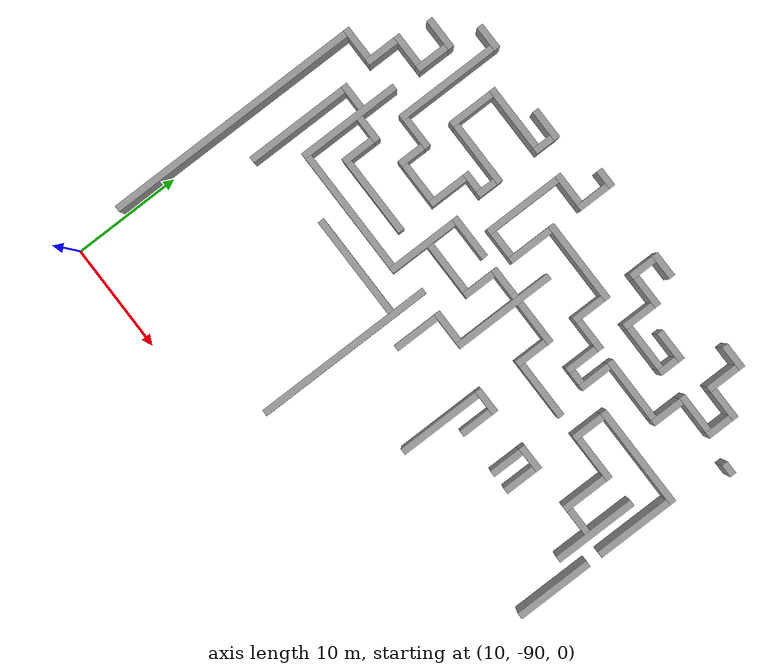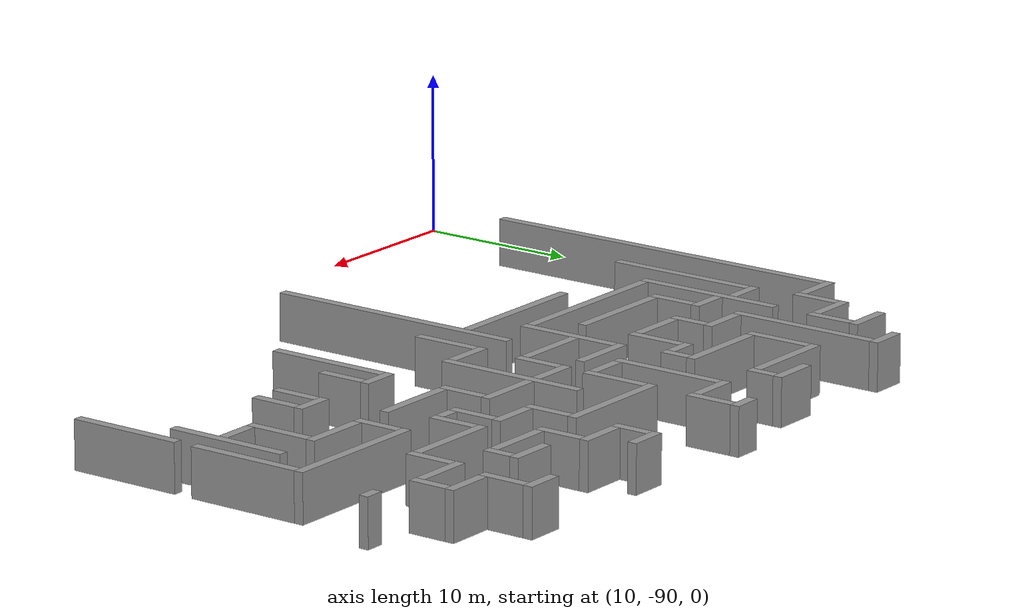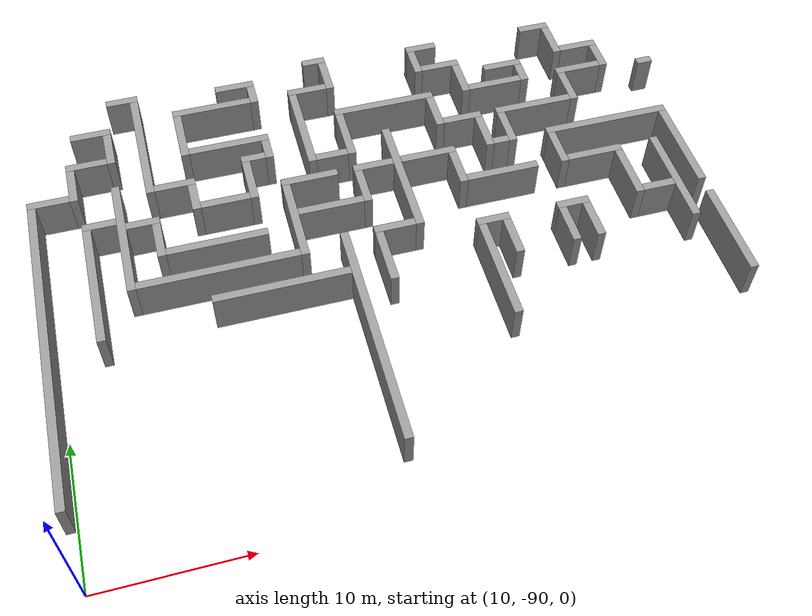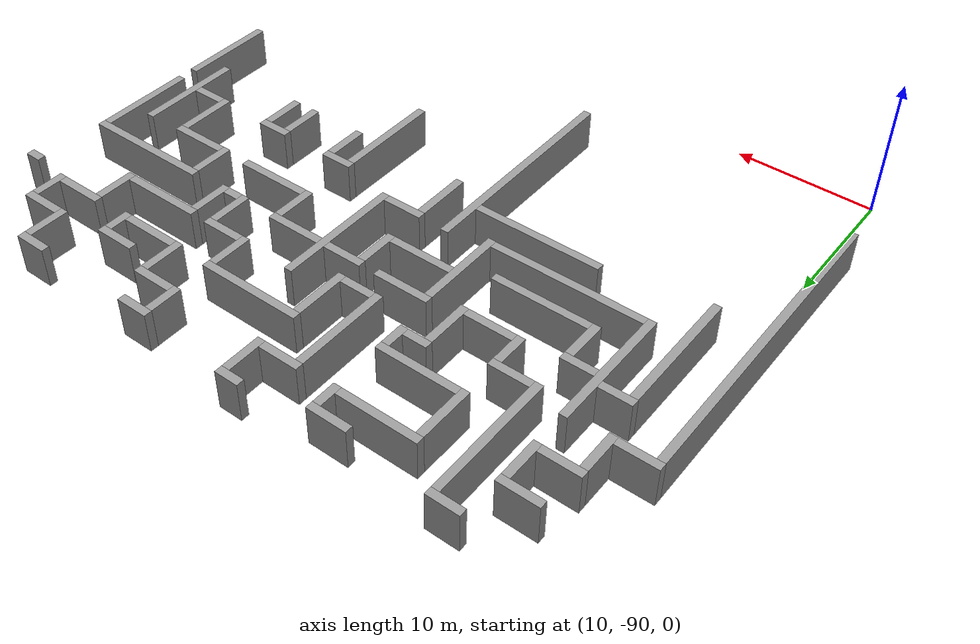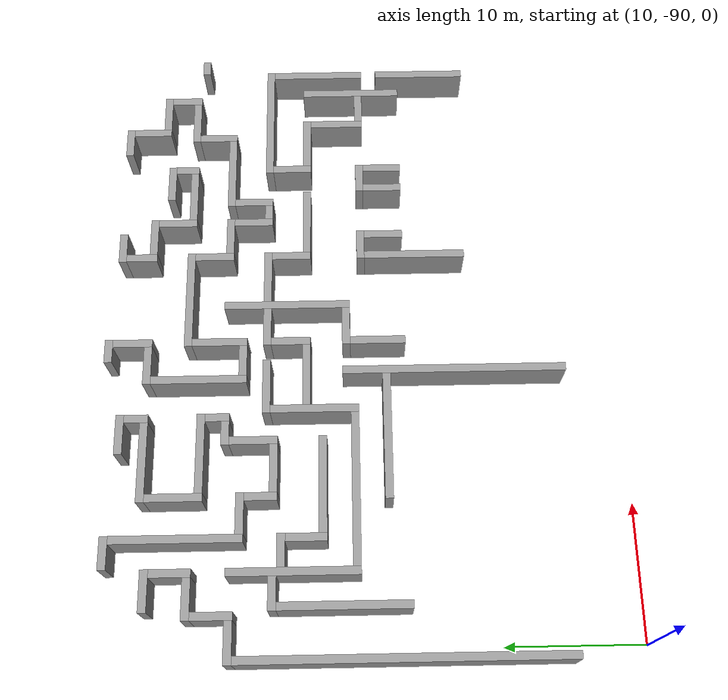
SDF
<sdf version="1.4">
 <model name="ButterflyWorld">
  <static>1</static>
  <link name="Wall_160">
   <collision name="Wall_160_Collision">
    <geometry><box><size>1.80000 0.60000 3.00000</size></box></geometry>
    <pose>32.10000 -51.30000 0 0 0 0.00000</pose>
   </collision>
   <visual name="Wall_160_Visual">
    <geometry><box><size>1.80000 0.60000 3.00000</size></box></geometry>
    <material>
     <script><uri>file://media/materials/scripts/gazebo.material</uri><name>Gazebo/Grey</name></script>
    </material>
    <pose>32.10000 -51.30000 0 0 0 0.00000</pose>
   </visual>
  </link>
  <link name="Wall_161">
   <collision name="Wall_161_Collision">
    <geometry><box><size>2.40000 0.60000 3.00000</size></box></geometry>
    <pose>16.80000 -51.90000 0 0 0 0.00000</pose>
   </collision>
   <visual name="Wall_161_Visual">
    <geometry><box><size>2.40000 0.60000 3.00000</size></box></geometry>
    <material>
     <script><uri>file://media/materials/scripts/gazebo.material</uri><name>Gazebo/Grey</name></script>
    </material>
    <pose>16.80000 -51.90000 0 0 0 0.00000</pose>
   </visual>
  </link>
  <link name="Wall_162">
   <collision name="Wall_162_Collision">
    <geometry><box><size>0.60000 3.00000 3.00000</size></box></geometry>
    <pose>32.70000 -53.10000 0 0 0 0.00000</pose>
   </collision>
   <visual name="Wall_162_Visual">
    <geometry><box><size>0.60000 3.00000 3.00000</size></box></geometry>
    <material>
     <script><uri>file://media/materials/scripts/gazebo.material</uri><name>Gazebo/Grey</name></script>
    </material>
    <pose>32.70000 -53.10000 0 0 0 0.00000</pose>
   </visual>
  </link>
  <link name="Wall_163">
   <collision name="Wall_163_Collision">
    <geometry><box><size>2.40000 0.60000 3.00000</size></box></geometry>
    <pose>40.80000 -51.90000 0 0 0 0.00000</pose>
   </collision>
   <visual name="Wall_163_Visual">
    <geometry><box><size>2.40000 0.60000 3.00000</size></box></geometry>
    <material>
     <script><uri>file://media/materials/scripts/gazebo.material</uri><name>Gazebo/Grey</name></script>
    </material>
    <pose>40.80000 -51.90000 0 0 0 0.00000</pose>
   </visual>
  </link>
  <link name="Wall_164">
   <collision name="Wall_164_Collision">
    <geometry><box><size>2.40000 0.60000 3.00000</size></box></geometry>
    <pose>50.40000 -51.90000 0 0 0 0.00000</pose>
   </collision>
   <visual name="Wall_164_Visual">
    <geometry><box><size>2.40000 0.60000 3.00000</size></box></geometry>
    <material>
     <script><uri>file://media/materials/scripts/gazebo.material</uri><name>Gazebo/Grey</name></script>
    </material>
    <pose>50.40000 -51.90000 0 0 0 0.00000</pose>
   </visual>
  </link>
  <link name="Wall_165">
   <collision name="Wall_165_Collision">
    <geometry><box><size>0.60000 9.60000 3.00000</size></box></geometry>
    <pose>17.70000 -57.00000 0 0 0 0.00000</pose>
   </collision>
   <visual name="Wall_165_Visual">
    <geometry><box><size>0.60000 9.60000 3.00000</size></box></geometry>
    <material>
     <script><uri>file://media/materials/scripts/gazebo.material</uri><name>Gazebo/Grey</name></script>
    </material>
    <pose>17.70000 -57.00000 0 0 0 0.00000</pose>
   </visual>
  </link>
  <link name="Wall_166">
   <collision name="Wall_166_Collision">
    <geometry><box><size>3.00000 0.60000 3.00000</size></box></geometry>
    <pose>25.50000 -52.50000 0 0 0 0.00000</pose>
   </collision>
   <visual name="Wall_166_Visual">
    <geometry><box><size>3.00000 0.60000 3.00000</size></box></geometry>
    <material>
     <script><uri>file://media/materials/scripts/gazebo.material</uri><name>Gazebo/Grey</name></script>
    </material>
    <pose>25.50000 -52.50000 0 0 0 0.00000</pose>
   </visual>
  </link>
  <link name="Wall_167">
   <collision name="Wall_167_Collision">
    <geometry><box><size>0.60000 2.40000 3.00000</size></box></geometry>
    <pose>39.90000 -53.40000 0 0 0 0.00000</pose>
   </collision>
   <visual name="Wall_167_Visual">
    <geometry><box><size>0.60000 2.40000 3.00000</size></box></geometry>
    <material>
     <script><uri>file://media/materials/scripts/gazebo.material</uri><name>Gazebo/Grey</name></script>
    </material>
    <pose>39.90000 -53.40000 0 0 0 0.00000</pose>
   </visual>
  </link>
  <link name="Wall_168">
   <collision name="Wall_168_Collision">
    <geometry><box><size>0.60000 3.00000 3.00000</size></box></geometry>
    <pose>51.30000 -53.70000 0 0 0 0.00000</pose>
   </collision>
   <visual name="Wall_168_Visual">
    <geometry><box><size>0.60000 3.00000 3.00000</size></box></geometry>
    <material>
     <script><uri>file://media/materials/scripts/gazebo.material</uri><name>Gazebo/Grey</name></script>
    </material>
    <pose>51.30000 -53.70000 0 0 0 0.00000</pose>
   </visual>
  </link>
  <link name="Wall_169">
   <collision name="Wall_169_Collision">
    <geometry><box><size>0.60000 1.80000 3.00000</size></box></geometry>
    <pose>26.70000 -53.70000 0 0 0 0.00000</pose>
   </collision>
   <visual name="Wall_169_Visual">
    <geometry><box><size>0.60000 1.80000 3.00000</size></box></geometry>
    <material>
     <script><uri>file://media/materials/scripts/gazebo.material</uri><name>Gazebo/Grey</name></script>
    </material>
    <pose>26.70000 -53.70000 0 0 0 0.00000</pose>
   </visual>
  </link>
  <link name="Wall_170">
   <collision name="Wall_170_Collision">
    <geometry><box><size>6.00000 0.60000 3.00000</size></box></geometry>
    <pose>23.40000 -54.30000 0 0 0 0.00000</pose>
   </collision>
   <visual name="Wall_170_Visual">
    <geometry><box><size>6.00000 0.60000 3.00000</size></box></geometry>
    <material>
     <script><uri>file://media/materials/scripts/gazebo.material</uri><name>Gazebo/Grey</name></script>
    </material>
    <pose>23.40000 -54.30000 0 0 0 0.00000</pose>
   </visual>
  </link>
  <link name="Wall_171">
   <collision name="Wall_171_Collision">
    <geometry><box><size>3.00000 0.60000 3.00000</size></box></geometry>
    <pose>30.90000 -54.30000 0 0 0 0.00000</pose>
   </collision>
   <visual name="Wall_171_Visual">
    <geometry><box><size>3.00000 0.60000 3.00000</size></box></geometry>
    <material>
     <script><uri>file://media/materials/scripts/gazebo.material</uri><name>Gazebo/Grey</name></script>
    </material>
    <pose>30.90000 -54.30000 0 0 0 0.00000</pose>
   </visual>
  </link>
  <link name="Wall_172">
   <collision name="Wall_172_Collision">
    <geometry><box><size>3.00000 0.60000 3.00000</size></box></geometry>
    <pose>41.70000 -54.30000 0 0 0 0.00000</pose>
   </collision>
   <visual name="Wall_172_Visual">
    <geometry><box><size>3.00000 0.60000 3.00000</size></box></geometry>
    <material>
     <script><uri>file://media/materials/scripts/gazebo.material</uri><name>Gazebo/Grey</name></script>
    </material>
    <pose>41.70000 -54.30000 0 0 0 0.00000</pose>
   </visual>
  </link>
  <link name="Wall_173">
   <collision name="Wall_173_Collision">
    <geometry><box><size>3.00000 0.60000 3.00000</size></box></geometry>
    <pose>14.10000 -54.90000 0 0 0 0.00000</pose>
   </collision>
   <visual name="Wall_173_Visual">
    <geometry><box><size>3.00000 0.60000 3.00000</size></box></geometry>
    <material>
     <script><uri>file://media/materials/scripts/gazebo.material</uri><name>Gazebo/Grey</name></script>
    </material>
    <pose>14.10000 -54.90000 0 0 0 0.00000</pose>
   </visual>
  </link>
  <link name="Wall_174">
   <collision name="Wall_174_Collision">
    <geometry><box><size>0.60000 4.20000 3.00000</size></box></geometry>
    <pose>20.70000 -56.70000 0 0 0 0.00000</pose>
   </collision>
   <visual name="Wall_174_Visual">
    <geometry><box><size>0.60000 4.20000 3.00000</size></box></geometry>
    <material>
     <script><uri>file://media/materials/scripts/gazebo.material</uri><name>Gazebo/Grey</name></script>
    </material>
    <pose>20.70000 -56.70000 0 0 0 0.00000</pose>
   </visual>
  </link>
  <link name="Wall_175">
   <collision name="Wall_175_Collision">
    <geometry><box><size>0.60000 7.20000 3.00000</size></box></geometry>
    <pose>29.70000 -58.20000 0 0 0 0.00000</pose>
   </collision>
   <visual name="Wall_175_Visual">
    <geometry><box><size>0.60000 7.20000 3.00000</size></box></geometry>
    <material>
     <script><uri>file://media/materials/scripts/gazebo.material</uri><name>Gazebo/Grey</name></script>
    </material>
    <pose>29.70000 -58.20000 0 0 0 0.00000</pose>
   </visual>
  </link>
  <link name="Wall_176">
   <collision name="Wall_176_Collision">
    <geometry><box><size>0.60000 3.00000 3.00000</size></box></geometry>
    <pose>42.90000 -56.10000 0 0 0 0.00000</pose>
   </collision>
   <visual name="Wall_176_Visual">
    <geometry><box><size>0.60000 3.00000 3.00000</size></box></geometry>
    <material>
     <script><uri>file://media/materials/scripts/gazebo.material</uri><name>Gazebo/Grey</name></script>
    </material>
    <pose>42.90000 -56.10000 0 0 0 0.00000</pose>
   </visual>
  </link>
  <link name="Wall_177">
   <collision name="Wall_177_Collision">
    <geometry><box><size>3.00000 0.60000 3.00000</size></box></geometry>
    <pose>53.10000 -54.90000 0 0 0 0.00000</pose>
   </collision>
   <visual name="Wall_177_Visual">
    <geometry><box><size>3.00000 0.60000 3.00000</size></box></geometry>
    <material>
     <script><uri>file://media/materials/scripts/gazebo.material</uri><name>Gazebo/Grey</name></script>
    </material>
    <pose>53.10000 -54.90000 0 0 0 0.00000</pose>
   </visual>
  </link>
  <link name="Wall_178">
   <collision name="Wall_178_Collision">
    <geometry><box><size>0.60000 3.00000 3.00000</size></box></geometry>
    <pose>15.30000 -56.70000 0 0 0 0.00000</pose>
   </collision>
   <visual name="Wall_178_Visual">
    <geometry><box><size>0.60000 3.00000 3.00000</size></box></geometry>
    <material>
     <script><uri>file://media/materials/scripts/gazebo.material</uri><name>Gazebo/Grey</name></script>
    </material>
    <pose>15.30000 -56.70000 0 0 0 0.00000</pose>
   </visual>
  </link>
  <link name="Wall_179">
   <collision name="Wall_179_Collision">
    <geometry><box><size>3.00000 0.60000 3.00000</size></box></geometry>
    <pose>46.50000 -55.50000 0 0 0 0.00000</pose>
   </collision>
   <visual name="Wall_179_Visual">
    <geometry><box><size>3.00000 0.60000 3.00000</size></box></geometry>
    <material>
     <script><uri>file://media/materials/scripts/gazebo.material</uri><name>Gazebo/Grey</name></script>
    </material>
    <pose>46.50000 -55.50000 0 0 0 0.00000</pose>
   </visual>
  </link>
  <link name="Wall_180">
   <collision name="Wall_180_Collision">
    <geometry><box><size>0.60000 2.40000 3.00000</size></box></geometry>
    <pose>54.30000 -56.40000 0 0 0 0.00000</pose>
   </collision>
   <visual name="Wall_180_Visual">
    <geometry><box><size>0.60000 2.40000 3.00000</size></box></geometry>
    <material>
     <script><uri>file://media/materials/scripts/gazebo.material</uri><name>Gazebo/Grey</name></script>
    </material>
    <pose>54.30000 -56.40000 0 0 0 0.00000</pose>
   </visual>
  </link>
  <link name="Wall_181">
   <collision name="Wall_181_Collision">
    <geometry><box><size>0.60000 1.80000 3.00000</size></box></geometry>
    <pose>47.70000 -56.70000 0 0 0 0.00000</pose>
   </collision>
   <visual name="Wall_181_Visual">
    <geometry><box><size>0.60000 1.80000 3.00000</size></box></geometry>
    <material>
     <script><uri>file://media/materials/scripts/gazebo.material</uri><name>Gazebo/Grey</name></script>
    </material>
    <pose>47.70000 -56.70000 0 0 0 0.00000</pose>
   </visual>
  </link>
  <link name="Wall_182">
   <collision name="Wall_182_Collision">
    <geometry><box><size>7.80000 0.60000 3.00000</size></box></geometry>
    <pose>36.30000 -57.30000 0 0 0 0.00000</pose>
   </collision>
   <visual name="Wall_182_Visual">
    <geometry><box><size>7.80000 0.60000 3.00000</size></box></geometry>
    <material>
     <script><uri>file://media/materials/scripts/gazebo.material</uri><name>Gazebo/Grey</name></script>
    </material>
    <pose>36.30000 -57.30000 0 0 0 0.00000</pose>
   </visual>
  </link>
  <link name="Wall_183">
   <collision name="Wall_183_Collision">
    <geometry><box><size>4.20000 0.60000 3.00000</size></box></geometry>
    <pose>45.30000 -57.30000 0 0 0 0.00000</pose>
   </collision>
   <visual name="Wall_183_Visual">
    <geometry><box><size>4.20000 0.60000 3.00000</size></box></geometry>
    <material>
     <script><uri>file://media/materials/scripts/gazebo.material</uri><name>Gazebo/Grey</name></script>
    </material>
    <pose>45.30000 -57.30000 0 0 0 0.00000</pose>
   </visual>
  </link>
  <link name="Wall_184">
   <collision name="Wall_184_Collision">
    <geometry><box><size>3.60000 0.60000 3.00000</size></box></geometry>
    <pose>52.20000 -57.30000 0 0 0 0.00000</pose>
   </collision>
   <visual name="Wall_184_Visual">
    <geometry><box><size>3.60000 0.60000 3.00000</size></box></geometry>
    <material>
     <script><uri>file://media/materials/scripts/gazebo.material</uri><name>Gazebo/Grey</name></script>
    </material>
    <pose>52.20000 -57.30000 0 0 0 0.00000</pose>
   </visual>
  </link>
  <link name="Wall_185">
   <collision name="Wall_185_Collision">
    <geometry><box><size>3.00000 0.60000 3.00000</size></box></geometry>
    <pose>13.50000 -57.90000 0 0 0 0.00000</pose>
   </collision>
   <visual name="Wall_185_Visual">
    <geometry><box><size>3.00000 0.60000 3.00000</size></box></geometry>
    <material>
     <script><uri>file://media/materials/scripts/gazebo.material</uri><name>Gazebo/Grey</name></script>
    </material>
    <pose>13.50000 -57.90000 0 0 0 0.00000</pose>
   </visual>
  </link>
  <link name="Wall_186">
   <collision name="Wall_186_Collision">
    <geometry><box><size>0.60000 4.20000 3.00000</size></box></geometry>
    <pose>32.70000 -59.70000 0 0 0 0.00000</pose>
   </collision>
   <visual name="Wall_186_Visual">
    <geometry><box><size>0.60000 4.20000 3.00000</size></box></geometry>
    <material>
     <script><uri>file://media/materials/scripts/gazebo.material</uri><name>Gazebo/Grey</name></script>
    </material>
    <pose>32.70000 -59.70000 0 0 0 0.00000</pose>
   </visual>
  </link>
  <link name="Wall_187">
   <collision name="Wall_187_Collision">
    <geometry><box><size>0.60000 3.00000 3.00000</size></box></geometry>
    <pose>39.90000 -59.10000 0 0 0 0.00000</pose>
   </collision>
   <visual name="Wall_187_Visual">
    <geometry><box><size>0.60000 3.00000 3.00000</size></box></geometry>
    <material>
     <script><uri>file://media/materials/scripts/gazebo.material</uri><name>Gazebo/Grey</name></script>
    </material>
    <pose>39.90000 -59.10000 0 0 0 0.00000</pose>
   </visual>
  </link>
  <link name="Wall_188">
   <collision name="Wall_188_Collision">
    <geometry><box><size>0.60000 3.00000 3.00000</size></box></geometry>
    <pose>50.70000 -59.10000 0 0 0 0.00000</pose>
   </collision>
   <visual name="Wall_188_Visual">
    <geometry><box><size>0.60000 3.00000 3.00000</size></box></geometry>
    <material>
     <script><uri>file://media/materials/scripts/gazebo.material</uri><name>Gazebo/Grey</name></script>
    </material>
    <pose>50.70000 -59.10000 0 0 0 0.00000</pose>
   </visual>
  </link>
  <link name="Wall_189">
   <collision name="Wall_189_Collision">
    <geometry><box><size>1.20000 0.60000 3.00000</size></box></geometry>
    <pose>57.60000 -57.90000 0 0 0 0.00000</pose>
   </collision>
   <visual name="Wall_189_Visual">
    <geometry><box><size>1.20000 0.60000 3.00000</size></box></geometry>
    <material>
     <script><uri>file://media/materials/scripts/gazebo.material</uri><name>Gazebo/Grey</name></script>
    </material>
    <pose>57.60000 -57.90000 0 0 0 0.00000</pose>
   </visual>
  </link>
  <link name="Wall_190">
   <collision name="Wall_190_Collision">
    <geometry><box><size>0.60000 3.00000 3.00000</size></box></geometry>
    <pose>12.30000 -59.70000 0 0 0 0.00000</pose>
   </collision>
   <visual name="Wall_190_Visual">
    <geometry><box><size>0.60000 3.00000 3.00000</size></box></geometry>
    <material>
     <script><uri>file://media/materials/scripts/gazebo.material</uri><name>Gazebo/Grey</name></script>
    </material>
    <pose>12.30000 -59.70000 0 0 0 0.00000</pose>
   </visual>
  </link>
  <link name="Wall_191">
   <collision name="Wall_191_Collision">
    <geometry><box><size>6.00000 0.60000 3.00000</size></box></geometry>
    <pose>24.00000 -58.50000 0 0 0 0.00000</pose>
   </collision>
   <visual name="Wall_191_Visual">
    <geometry><box><size>6.00000 0.60000 3.00000</size></box></geometry>
    <material>
     <script><uri>file://media/materials/scripts/gazebo.material</uri><name>Gazebo/Grey</name></script>
    </material>
    <pose>24.00000 -58.50000 0 0 0 0.00000</pose>
   </visual>
  </link>
  <link name="Wall_192">
   <collision name="Wall_192_Collision">
    <geometry><box><size>0.60000 1.80000 3.00000</size></box></geometry>
    <pose>26.70000 -59.70000 0 0 0 0.00000</pose>
   </collision>
   <visual name="Wall_192_Visual">
    <geometry><box><size>0.60000 1.80000 3.00000</size></box></geometry>
    <material>
     <script><uri>file://media/materials/scripts/gazebo.material</uri><name>Gazebo/Grey</name></script>
    </material>
    <pose>26.70000 -59.70000 0 0 0 0.00000</pose>
   </visual>
  </link>
  <link name="Wall_193">
   <collision name="Wall_193_Collision">
    <geometry><box><size>1.80000 0.60000 3.00000</size></box></geometry>
    <pose>25.50000 -60.30000 0 0 0 0.00000</pose>
   </collision>
   <visual name="Wall_193_Visual">
    <geometry><box><size>1.80000 0.60000 3.00000</size></box></geometry>
    <material>
     <script><uri>file://media/materials/scripts/gazebo.material</uri><name>Gazebo/Grey</name></script>
    </material>
    <pose>25.50000 -60.30000 0 0 0 0.00000</pose>
   </visual>
  </link>
  <link name="Wall_194">
   <collision name="Wall_194_Collision">
    <geometry><box><size>0.60000 9.60000 3.00000</size></box></geometry>
    <pose>35.70000 -64.80000 0 0 0 0.00000</pose>
   </collision>
   <visual name="Wall_194_Visual">
    <geometry><box><size>0.60000 9.60000 3.00000</size></box></geometry>
    <material>
     <script><uri>file://media/materials/scripts/gazebo.material</uri><name>Gazebo/Grey</name></script>
    </material>
    <pose>35.70000 -64.80000 0 0 0 0.00000</pose>
   </visual>
  </link>
  <link name="Wall_195">
   <collision name="Wall_195_Collision">
    <geometry><box><size>3.00000 0.60000 3.00000</size></box></geometry>
    <pose>41.70000 -60.30000 0 0 0 0.00000</pose>
   </collision>
   <visual name="Wall_195_Visual">
    <geometry><box><size>3.00000 0.60000 3.00000</size></box></geometry>
    <material>
     <script><uri>file://media/materials/scripts/gazebo.material</uri><name>Gazebo/Grey</name></script>
    </material>
    <pose>41.70000 -60.30000 0 0 0 0.00000</pose>
   </visual>
  </link>
  <link name="Wall_196">
   <collision name="Wall_196_Collision">
    <geometry><box><size>6.00000 0.60000 3.00000</size></box></geometry>
    <pose>47.40000 -60.30000 0 0 0 0.00000</pose>
   </collision>
   <visual name="Wall_196_Visual">
    <geometry><box><size>6.00000 0.60000 3.00000</size></box></geometry>
    <material>
     <script><uri>file://media/materials/scripts/gazebo.material</uri><name>Gazebo/Grey</name></script>
    </material>
    <pose>47.40000 -60.30000 0 0 0 0.00000</pose>
   </visual>
  </link>
  <link name="Wall_197">
   <collision name="Wall_197_Collision">
    <geometry><box><size>3.00000 0.60000 3.00000</size></box></geometry>
    <pose>10.50000 -60.90000 0 0 0 0.00000</pose>
   </collision>
   <visual name="Wall_197_Visual">
    <geometry><box><size>3.00000 0.60000 3.00000</size></box></geometry>
    <material>
     <script><uri>file://media/materials/scripts/gazebo.material</uri><name>Gazebo/Grey</name></script>
    </material>
    <pose>10.50000 -60.90000 0 0 0 0.00000</pose>
   </visual>
  </link>
  <link name="Wall_198">
   <collision name="Wall_198_Collision">
    <geometry><box><size>0.60000 9.60000 3.00000</size></box></geometry>
    <pose>15.30000 -65.40000 0 0 0 0.00000</pose>
   </collision>
   <visual name="Wall_198_Visual">
    <geometry><box><size>0.60000 9.60000 3.00000</size></box></geometry>
    <material>
     <script><uri>file://media/materials/scripts/gazebo.material</uri><name>Gazebo/Grey</name></script>
    </material>
    <pose>15.30000 -65.40000 0 0 0 0.00000</pose>
   </visual>
  </link>
  <link name="Wall_199">
   <collision name="Wall_199_Collision">
    <geometry><box><size>0.60000 3.60000 3.00000</size></box></geometry>
    <pose>24.90000 -62.40000 0 0 0 0.00000</pose>
   </collision>
   <visual name="Wall_199_Visual">
    <geometry><box><size>0.60000 3.60000 3.00000</size></box></geometry>
    <material>
     <script><uri>file://media/materials/scripts/gazebo.material</uri><name>Gazebo/Grey</name></script>
    </material>
    <pose>24.90000 -62.40000 0 0 0 0.00000</pose>
   </visual>
  </link>
  <link name="Wall_200">
   <collision name="Wall_200_Collision">
    <geometry><box><size>0.60000 3.00000 3.00000</size></box></geometry>
    <pose>42.90000 -62.10000 0 0 0 0.00000</pose>
   </collision>
   <visual name="Wall_200_Visual">
    <geometry><box><size>0.60000 3.00000 3.00000</size></box></geometry>
    <material>
     <script><uri>file://media/materials/scripts/gazebo.material</uri><name>Gazebo/Grey</name></script>
    </material>
    <pose>42.90000 -62.10000 0 0 0 0.00000</pose>
   </visual>
  </link>
  <link name="Wall_201">
   <collision name="Wall_201_Collision">
    <geometry><box><size>0.60000 3.00000 3.00000</size></box></geometry>
    <pose>44.70000 -62.10000 0 0 0 0.00000</pose>
   </collision>
   <visual name="Wall_201_Visual">
    <geometry><box><size>0.60000 3.00000 3.00000</size></box></geometry>
    <material>
     <script><uri>file://media/materials/scripts/gazebo.material</uri><name>Gazebo/Grey</name></script>
    </material>
    <pose>44.70000 -62.10000 0 0 0 0.00000</pose>
   </visual>
  </link>
  <link name="Wall_202">
   <collision name="Wall_202_Collision">
    <geometry><box><size>0.60000 24.00000 3.00000</size></box></geometry>
    <pose>9.30000 -73.20000 0 0 0 0.00000</pose>
   </collision>
   <visual name="Wall_202_Visual">
    <geometry><box><size>0.60000 24.00000 3.00000</size></box></geometry>
    <material>
     <script><uri>file://media/materials/scripts/gazebo.material</uri><name>Gazebo/Grey</name></script>
    </material>
    <pose>9.30000 -73.20000 0 0 0 0.00000</pose>
   </visual>
  </link>
  <link name="Wall_203">
   <collision name="Wall_203_Collision">
    <geometry><box><size>3.00000 0.60000 3.00000</size></box></geometry>
    <pose>19.50000 -61.50000 0 0 0 0.00000</pose>
   </collision>
   <visual name="Wall_203_Visual">
    <geometry><box><size>3.00000 0.60000 3.00000</size></box></geometry>
    <material>
     <script><uri>file://media/materials/scripts/gazebo.material</uri><name>Gazebo/Grey</name></script>
    </material>
    <pose>19.50000 -61.50000 0 0 0 0.00000</pose>
   </visual>
  </link>
  <link name="Wall_204">
   <collision name="Wall_204_Collision">
    <geometry><box><size>2.40000 0.60000 3.00000</size></box></geometry>
    <pose>31.20000 -61.50000 0 0 0 0.00000</pose>
   </collision>
   <visual name="Wall_204_Visual">
    <geometry><box><size>2.40000 0.60000 3.00000</size></box></geometry>
    <material>
     <script><uri>file://media/materials/scripts/gazebo.material</uri><name>Gazebo/Grey</name></script>
    </material>
    <pose>31.20000 -61.50000 0 0 0 0.00000</pose>
   </visual>
  </link>
  <link name="Wall_205">
   <collision name="Wall_205_Collision">
    <geometry><box><size>0.60000 2.40000 3.00000</size></box></geometry>
    <pose>20.70000 -63.00000 0 0 0 0.00000</pose>
   </collision>
   <visual name="Wall_205_Visual">
    <geometry><box><size>0.60000 2.40000 3.00000</size></box></geometry>
    <material>
     <script><uri>file://media/materials/scripts/gazebo.material</uri><name>Gazebo/Grey</name></script>
    </material>
    <pose>20.70000 -63.00000 0 0 0 0.00000</pose>
   </visual>
  </link>
  <link name="Wall_206">
   <collision name="Wall_206_Collision">
    <geometry><box><size>4.20000 0.60000 3.00000</size></box></geometry>
    <pose>29.10000 -63.30000 0 0 0 0.00000</pose>
   </collision>
   <visual name="Wall_206_Visual">
    <geometry><box><size>4.20000 0.60000 3.00000</size></box></geometry>
    <material>
     <script><uri>file://media/materials/scripts/gazebo.material</uri><name>Gazebo/Grey</name></script>
    </material>
    <pose>29.10000 -63.30000 0 0 0 0.00000</pose>
   </visual>
  </link>
  <link name="Wall_207">
   <collision name="Wall_207_Collision">
    <geometry><box><size>3.00000 0.60000 3.00000</size></box></geometry>
    <pose>33.90000 -63.30000 0 0 0 0.00000</pose>
   </collision>
   <visual name="Wall_207_Visual">
    <geometry><box><size>3.00000 0.60000 3.00000</size></box></geometry>
    <material>
     <script><uri>file://media/materials/scripts/gazebo.material</uri><name>Gazebo/Grey</name></script>
    </material>
    <pose>33.90000 -63.30000 0 0 0 0.00000</pose>
   </visual>
  </link>
  <link name="Wall_208">
   <collision name="Wall_208_Collision">
    <geometry><box><size>4.20000 0.60000 3.00000</size></box></geometry>
    <pose>38.10000 -63.30000 0 0 0 0.00000</pose>
   </collision>
   <visual name="Wall_208_Visual">
    <geometry><box><size>4.20000 0.60000 3.00000</size></box></geometry>
    <material>
     <script><uri>file://media/materials/scripts/gazebo.material</uri><name>Gazebo/Grey</name></script>
    </material>
    <pose>38.10000 -63.30000 0 0 0 0.00000</pose>
   </visual>
  </link>
  <link name="Wall_209">
   <collision name="Wall_209_Collision">
    <geometry><box><size>1.20000 0.60000 3.00000</size></box></geometry>
    <pose>43.80000 -63.30000 0 0 0 0.00000</pose>
   </collision>
   <visual name="Wall_209_Visual">
    <geometry><box><size>1.20000 0.60000 3.00000</size></box></geometry>
    <material>
     <script><uri>file://media/materials/scripts/gazebo.material</uri><name>Gazebo/Grey</name></script>
    </material>
    <pose>43.80000 -63.30000 0 0 0 0.00000</pose>
   </visual>
  </link>
  <link name="Wall_210">
   <collision name="Wall_210_Collision">
    <geometry><box><size>9.60000 0.60000 3.00000</size></box></geometry>
    <pose>52.20000 -63.30000 0 0 0 0.00000</pose>
   </collision>
   <visual name="Wall_210_Visual">
    <geometry><box><size>9.60000 0.60000 3.00000</size></box></geometry>
    <material>
     <script><uri>file://media/materials/scripts/gazebo.material</uri><name>Gazebo/Grey</name></script>
    </material>
    <pose>52.20000 -63.30000 0 0 0 0.00000</pose>
   </visual>
  </link>
  <link name="Wall_211">
   <collision name="Wall_211_Collision">
    <geometry><box><size>2.40000 0.60000 3.00000</size></box></geometry>
    <pose>13.80000 -63.90000 0 0 0 0.00000</pose>
   </collision>
   <visual name="Wall_211_Visual">
    <geometry><box><size>2.40000 0.60000 3.00000</size></box></geometry>
    <material>
     <script><uri>file://media/materials/scripts/gazebo.material</uri><name>Gazebo/Grey</name></script>
    </material>
    <pose>13.80000 -63.90000 0 0 0 0.00000</pose>
   </visual>
  </link>
  <link name="Wall_212">
   <collision name="Wall_212_Collision">
    <geometry><box><size>3.60000 0.60000 3.00000</size></box></geometry>
    <pose>22.80000 -63.90000 0 0 0 0.00000</pose>
   </collision>
   <visual name="Wall_212_Visual">
    <geometry><box><size>3.60000 0.60000 3.00000</size></box></geometry>
    <material>
     <script><uri>file://media/materials/scripts/gazebo.material</uri><name>Gazebo/Grey</name></script>
    </material>
    <pose>22.80000 -63.90000 0 0 0 0.00000</pose>
   </visual>
  </link>
  <link name="Wall_213">
   <collision name="Wall_213_Collision">
    <geometry><box><size>0.60000 6.60000 3.00000</size></box></geometry>
    <pose>27.30000 -66.90000 0 0 0 0.00000</pose>
   </collision>
   <visual name="Wall_213_Visual">
    <geometry><box><size>0.60000 6.60000 3.00000</size></box></geometry>
    <material>
     <script><uri>file://media/materials/scripts/gazebo.material</uri><name>Gazebo/Grey</name></script>
    </material>
    <pose>27.30000 -66.90000 0 0 0 0.00000</pose>
   </visual>
  </link>
  <link name="Wall_214">
   <collision name="Wall_214_Collision">
    <geometry><box><size>0.60000 3.00000 3.00000</size></box></geometry>
    <pose>32.70000 -65.10000 0 0 0 0.00000</pose>
   </collision>
   <visual name="Wall_214_Visual">
    <geometry><box><size>0.60000 3.00000 3.00000</size></box></geometry>
    <material>
     <script><uri>file://media/materials/scripts/gazebo.material</uri><name>Gazebo/Grey</name></script>
    </material>
    <pose>32.70000 -65.10000 0 0 0 0.00000</pose>
   </visual>
  </link>
  <link name="Wall_215">
   <collision name="Wall_215_Collision">
    <geometry><box><size>0.60000 3.00000 3.00000</size></box></geometry>
    <pose>39.90000 -65.10000 0 0 0 0.00000</pose>
   </collision>
   <visual name="Wall_215_Visual">
    <geometry><box><size>0.60000 3.00000 3.00000</size></box></geometry>
    <material>
     <script><uri>file://media/materials/scripts/gazebo.material</uri><name>Gazebo/Grey</name></script>
    </material>
    <pose>39.90000 -65.10000 0 0 0 0.00000</pose>
   </visual>
  </link>
  <link name="Wall_216">
   <collision name="Wall_216_Collision">
    <geometry><box><size>0.60000 3.00000 3.00000</size></box></geometry>
    <pose>47.70000 -65.10000 0 0 0 0.00000</pose>
   </collision>
   <visual name="Wall_216_Visual">
    <geometry><box><size>0.60000 3.00000 3.00000</size></box></geometry>
    <material>
     <script><uri>file://media/materials/scripts/gazebo.material</uri><name>Gazebo/Grey</name></script>
    </material>
    <pose>47.70000 -65.10000 0 0 0 0.00000</pose>
   </visual>
  </link>
  <link name="Wall_217">
   <collision name="Wall_217_Collision">
    <geometry><box><size>0.60000 7.20000 3.00000</size></box></geometry>
    <pose>56.70000 -67.20000 0 0 0 0.00000</pose>
   </collision>
   <visual name="Wall_217_Visual">
    <geometry><box><size>0.60000 7.20000 3.00000</size></box></geometry>
    <material>
     <script><uri>file://media/materials/scripts/gazebo.material</uri><name>Gazebo/Grey</name></script>
    </material>
    <pose>56.70000 -67.20000 0 0 0 0.00000</pose>
   </visual>
  </link>
  <link name="Wall_218">
   <collision name="Wall_218_Collision">
    <geometry><box><size>0.60000 9.60000 3.00000</size></box></geometry>
    <pose>12.90000 -69.00000 0 0 0 0.00000</pose>
   </collision>
   <visual name="Wall_218_Visual">
    <geometry><box><size>0.60000 9.60000 3.00000</size></box></geometry>
    <material>
     <script><uri>file://media/materials/scripts/gazebo.material</uri><name>Gazebo/Grey</name></script>
    </material>
    <pose>12.90000 -69.00000 0 0 0 0.00000</pose>
   </visual>
  </link>
  <link name="Wall_219">
   <collision name="Wall_219_Collision">
    <geometry><box><size>2.40000 0.60000 3.00000</size></box></geometry>
    <pose>16.80000 -64.50000 0 0 0 0.00000</pose>
   </collision>
   <visual name="Wall_219_Visual">
    <geometry><box><size>2.40000 0.60000 3.00000</size></box></geometry>
    <material>
     <script><uri>file://media/materials/scripts/gazebo.material</uri><name>Gazebo/Grey</name></script>
    </material>
    <pose>16.80000 -64.50000 0 0 0 0.00000</pose>
   </visual>
  </link>
  <link name="Wall_220">
   <collision name="Wall_220_Collision">
    <geometry><box><size>0.60000 3.00000 3.00000</size></box></geometry>
    <pose>17.70000 -66.30000 0 0 0 0.00000</pose>
   </collision>
   <visual name="Wall_220_Visual">
    <geometry><box><size>0.60000 3.00000 3.00000</size></box></geometry>
    <material>
     <script><uri>file://media/materials/scripts/gazebo.material</uri><name>Gazebo/Grey</name></script>
    </material>
    <pose>17.70000 -66.30000 0 0 0 0.00000</pose>
   </visual>
  </link>
  <link name="Wall_221">
   <collision name="Wall_221_Collision">
    <geometry><box><size>4.80000 0.60000 3.00000</size></box></geometry>
    <pose>30.00000 -66.30000 0 0 0 0.00000</pose>
   </collision>
   <visual name="Wall_221_Visual">
    <geometry><box><size>4.80000 0.60000 3.00000</size></box></geometry>
    <material>
     <script><uri>file://media/materials/scripts/gazebo.material</uri><name>Gazebo/Grey</name></script>
    </material>
    <pose>30.00000 -66.30000 0 0 0 0.00000</pose>
   </visual>
  </link>
  <link name="Wall_222">
   <collision name="Wall_222_Collision">
    <geometry><box><size>5.40000 0.60000 3.00000</size></box></geometry>
    <pose>42.90000 -66.30000 0 0 0 0.00000</pose>
   </collision>
   <visual name="Wall_222_Visual">
    <geometry><box><size>5.40000 0.60000 3.00000</size></box></geometry>
    <material>
     <script><uri>file://media/materials/scripts/gazebo.material</uri><name>Gazebo/Grey</name></script>
    </material>
    <pose>42.90000 -66.30000 0 0 0 0.00000</pose>
   </visual>
  </link>
  <link name="Wall_223">
   <collision name="Wall_223_Collision">
    <geometry><box><size>4.20000 0.60000 3.00000</size></box></geometry>
    <pose>50.10000 -66.30000 0 0 0 0.00000</pose>
   </collision>
   <visual name="Wall_223_Visual">
    <geometry><box><size>4.20000 0.60000 3.00000</size></box></geometry>
    <material>
     <script><uri>file://media/materials/scripts/gazebo.material</uri><name>Gazebo/Grey</name></script>
    </material>
    <pose>50.10000 -66.30000 0 0 0 0.00000</pose>
   </visual>
  </link>
  <link name="Wall_224">
   <collision name="Wall_224_Collision">
    <geometry><box><size>0.60000 7.80000 3.00000</size></box></geometry>
    <pose>54.90000 -69.90000 0 0 0 0.00000</pose>
   </collision>
   <visual name="Wall_224_Visual">
    <geometry><box><size>0.60000 7.80000 3.00000</size></box></geometry>
    <material>
     <script><uri>file://media/materials/scripts/gazebo.material</uri><name>Gazebo/Grey</name></script>
    </material>
    <pose>54.90000 -69.90000 0 0 0 0.00000</pose>
   </visual>
  </link>
  <link name="Wall_225">
   <collision name="Wall_225_Collision">
    <geometry><box><size>0.60000 4.20000 3.00000</size></box></geometry>
    <pose>51.90000 -68.70000 0 0 0 0.00000</pose>
   </collision>
   <visual name="Wall_225_Visual">
    <geometry><box><size>0.60000 4.20000 3.00000</size></box></geometry>
    <material>
     <script><uri>file://media/materials/scripts/gazebo.material</uri><name>Gazebo/Grey</name></script>
    </material>
    <pose>51.90000 -68.70000 0 0 0 0.00000</pose>
   </visual>
  </link>
  <link name="Wall_226">
   <collision name="Wall_226_Collision">
    <geometry><box><size>7.20000 0.60000 3.00000</size></box></geometry>
    <pose>21.60000 -67.50000 0 0 0 0.00000</pose>
   </collision>
   <visual name="Wall_226_Visual">
    <geometry><box><size>7.20000 0.60000 3.00000</size></box></geometry>
    <material>
     <script><uri>file://media/materials/scripts/gazebo.material</uri><name>Gazebo/Grey</name></script>
    </material>
    <pose>21.60000 -67.50000 0 0 0 0.00000</pose>
   </visual>
  </link>
  <link name="Wall_227">
   <collision name="Wall_227_Collision">
    <geometry><box><size>0.60000 16.80000 3.00000</size></box></geometry>
    <pose>30.30000 -77.40000 0 0 0 0.00000</pose>
   </collision>
   <visual name="Wall_227_Visual">
    <geometry><box><size>0.60000 16.80000 3.00000</size></box></geometry>
    <material>
     <script><uri>file://media/materials/scripts/gazebo.material</uri><name>Gazebo/Grey</name></script>
    </material>
    <pose>30.30000 -77.40000 0 0 0 0.00000</pose>
   </visual>
  </link>
  <link name="Wall_228">
   <collision name="Wall_228_Collision">
    <geometry><box><size>3.00000 0.60000 3.00000</size></box></geometry>
    <pose>33.90000 -69.30000 0 0 0 0.00000</pose>
   </collision>
   <visual name="Wall_228_Visual">
    <geometry><box><size>3.00000 0.60000 3.00000</size></box></geometry>
    <material>
     <script><uri>file://media/materials/scripts/gazebo.material</uri><name>Gazebo/Grey</name></script>
    </material>
    <pose>33.90000 -69.30000 0 0 0 0.00000</pose>
   </visual>
  </link>
  <link name="Wall_229">
   <collision name="Wall_229_Collision">
    <geometry><box><size>11.40000 0.60000 3.00000</size></box></geometry>
    <pose>21.30000 -69.90000 0 0 0 0.00000</pose>
   </collision>
   <visual name="Wall_229_Visual">
    <geometry><box><size>11.40000 0.60000 3.00000</size></box></geometry>
    <material>
     <script><uri>file://media/materials/scripts/gazebo.material</uri><name>Gazebo/Grey</name></script>
    </material>
    <pose>21.30000 -69.90000 0 0 0 0.00000</pose>
   </visual>
  </link>
  <link name="Wall_230">
   <collision name="Wall_230_Collision">
    <geometry><box><size>0.60000 4.20000 3.00000</size></box></geometry>
    <pose>32.70000 -71.70000 0 0 0 0.00000</pose>
   </collision>
   <visual name="Wall_230_Visual">
    <geometry><box><size>0.60000 4.20000 3.00000</size></box></geometry>
    <material>
     <script><uri>file://media/materials/scripts/gazebo.material</uri><name>Gazebo/Grey</name></script>
    </material>
    <pose>32.70000 -71.70000 0 0 0 0.00000</pose>
   </visual>
  </link>
  <link name="Wall_231">
   <collision name="Wall_231_Collision">
    <geometry><box><size>2.40000 0.60000 3.00000</size></box></geometry>
    <pose>40.80000 -70.50000 0 0 0 0.00000</pose>
   </collision>
   <visual name="Wall_231_Visual">
    <geometry><box><size>2.40000 0.60000 3.00000</size></box></geometry>
    <material>
     <script><uri>file://media/materials/scripts/gazebo.material</uri><name>Gazebo/Grey</name></script>
    </material>
    <pose>40.80000 -70.50000 0 0 0 0.00000</pose>
   </visual>
  </link>
  <link name="Wall_232">
   <collision name="Wall_232_Collision">
    <geometry><box><size>2.40000 0.60000 3.00000</size></box></geometry>
    <pose>46.80000 -70.50000 0 0 0 0.00000</pose>
   </collision>
   <visual name="Wall_232_Visual">
    <geometry><box><size>2.40000 0.60000 3.00000</size></box></geometry>
    <material>
     <script><uri>file://media/materials/scripts/gazebo.material</uri><name>Gazebo/Grey</name></script>
    </material>
    <pose>46.80000 -70.50000 0 0 0 0.00000</pose>
   </visual>
  </link>
  <link name="Wall_233">
   <collision name="Wall_233_Collision">
    <geometry><box><size>2.40000 0.60000 3.00000</size></box></geometry>
    <pose>53.40000 -70.50000 0 0 0 0.00000</pose>
   </collision>
   <visual name="Wall_233_Visual">
    <geometry><box><size>2.40000 0.60000 3.00000</size></box></geometry>
    <material>
     <script><uri>file://media/materials/scripts/gazebo.material</uri><name>Gazebo/Grey</name></script>
    </material>
    <pose>53.40000 -70.50000 0 0 0 0.00000</pose>
   </visual>
  </link>
  <link name="Wall_234">
   <collision name="Wall_234_Collision">
    <geometry><box><size>0.60000 7.80000 3.00000</size></box></geometry>
    <pose>39.90000 -74.70000 0 0 0 0.00000</pose>
   </collision>
   <visual name="Wall_234_Visual">
    <geometry><box><size>0.60000 7.80000 3.00000</size></box></geometry>
    <material>
     <script><uri>file://media/materials/scripts/gazebo.material</uri><name>Gazebo/Grey</name></script>
    </material>
    <pose>39.90000 -74.70000 0 0 0 0.00000</pose>
   </visual>
  </link>
  <link name="Wall_235">
   <collision name="Wall_235_Collision">
    <geometry><box><size>0.60000 3.00000 3.00000</size></box></geometry>
    <pose>41.70000 -72.30000 0 0 0 0.00000</pose>
   </collision>
   <visual name="Wall_235_Visual">
    <geometry><box><size>0.60000 3.00000 3.00000</size></box></geometry>
    <material>
     <script><uri>file://media/materials/scripts/gazebo.material</uri><name>Gazebo/Grey</name></script>
    </material>
    <pose>41.70000 -72.30000 0 0 0 0.00000</pose>
   </visual>
  </link>
  <link name="Wall_236">
   <collision name="Wall_236_Collision">
    <geometry><box><size>0.60000 3.00000 3.00000</size></box></geometry>
    <pose>45.90000 -72.30000 0 0 0 0.00000</pose>
   </collision>
   <visual name="Wall_236_Visual">
    <geometry><box><size>0.60000 3.00000 3.00000</size></box></geometry>
    <material>
     <script><uri>file://media/materials/scripts/gazebo.material</uri><name>Gazebo/Grey</name></script>
    </material>
    <pose>45.90000 -72.30000 0 0 0 0.00000</pose>
   </visual>
  </link>
  <link name="Wall_237">
   <collision name="Wall_237_Collision">
    <geometry><box><size>0.60000 3.00000 3.00000</size></box></geometry>
    <pose>47.70000 -72.30000 0 0 0 0.00000</pose>
   </collision>
   <visual name="Wall_237_Visual">
    <geometry><box><size>0.60000 3.00000 3.00000</size></box></geometry>
    <material>
     <script><uri>file://media/materials/scripts/gazebo.material</uri><name>Gazebo/Grey</name></script>
    </material>
    <pose>47.70000 -72.30000 0 0 0 0.00000</pose>
   </visual>
  </link>
  <link name="Wall_238">
   <collision name="Wall_238_Collision">
    <geometry><box><size>9.60000 0.60000 3.00000</size></box></geometry>
    <pose>25.20000 -72.30000 0 0 0 0.00000</pose>
   </collision>
   <visual name="Wall_238_Visual">
    <geometry><box><size>9.60000 0.60000 3.00000</size></box></geometry>
    <material>
     <script><uri>file://media/materials/scripts/gazebo.material</uri><name>Gazebo/Grey</name></script>
    </material>
    <pose>25.20000 -72.30000 0 0 0 0.00000</pose>
   </visual>
  </link>
  <link name="Wall_239">
   <collision name="Wall_239_Collision">
    <geometry><box><size>0.60000 7.20000 3.00000</size></box></geometry>
    <pose>56.70000 -75.60000 0 0 0 0.00000</pose>
   </collision>
   <visual name="Wall_239_Visual">
    <geometry><box><size>0.60000 7.20000 3.00000</size></box></geometry>
    <material>
     <script><uri>file://media/materials/scripts/gazebo.material</uri><name>Gazebo/Grey</name></script>
    </material>
    <pose>56.70000 -75.60000 0 0 0 0.00000</pose>
   </visual>
  </link>
 </model>
</sdf>
